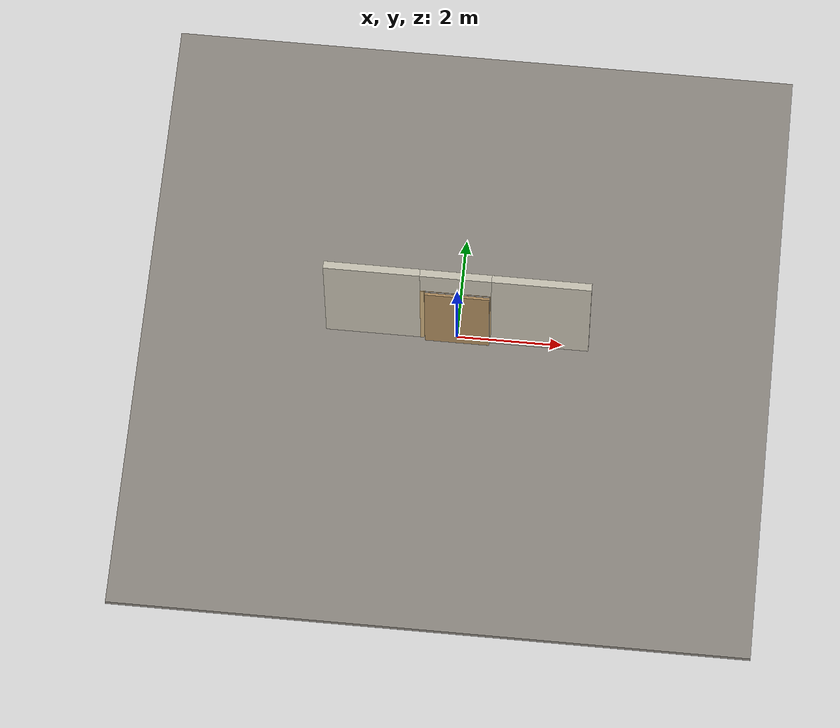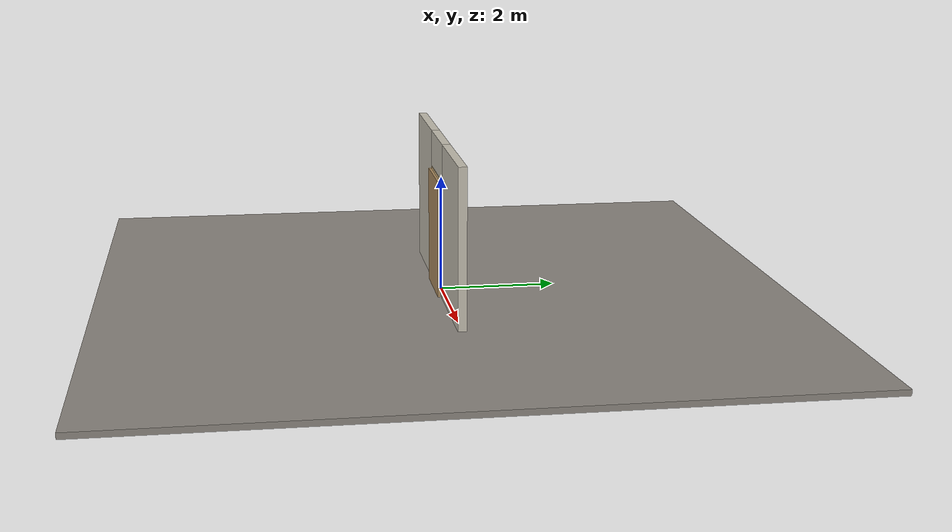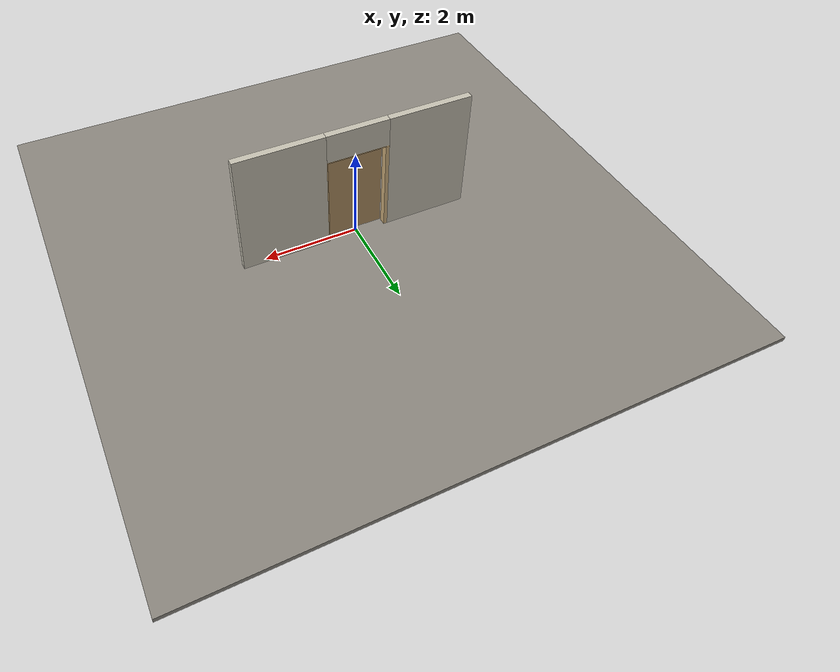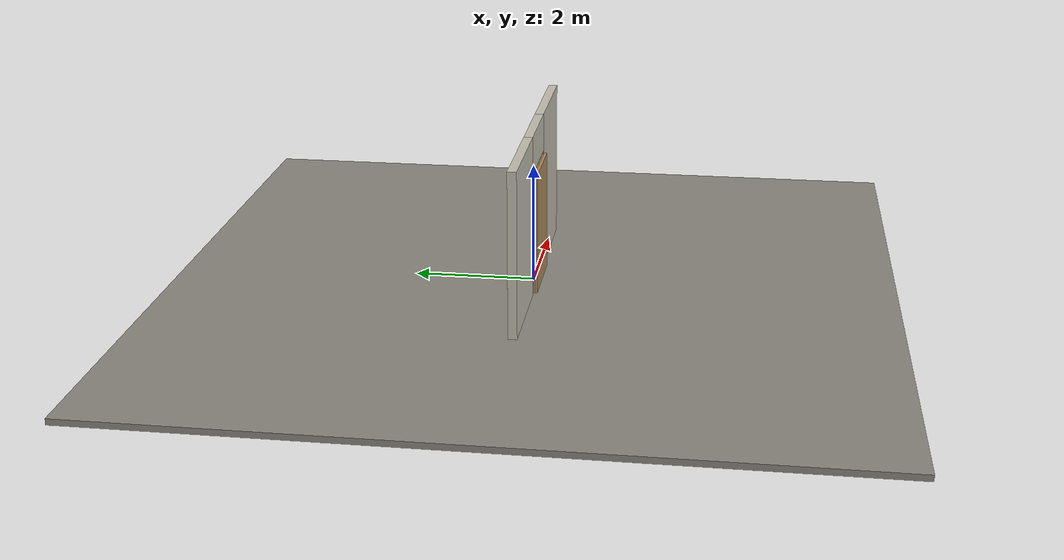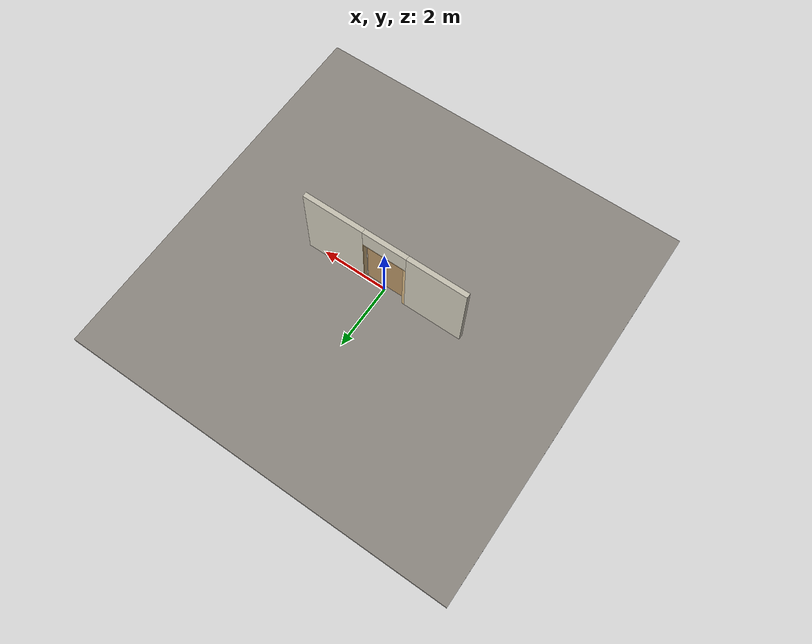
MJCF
<?xml version="1.0" ?>
<mujoco model="db0242_sliding_single_minimal">
  <compiler angle="radian" meshdir="../../hardware" texturedir="../../textures" autolimits="true" inertiafromgeom="false"/>
  <option timestep="0.002" integrator="implicitfast" cone="elliptic" impratio="10" noslip_iterations="3">
    <flag multiccd="enable"/>
  </option>
  <size memory="16M"/>
  <default>
    <geom condim="4" solref="0.005 1" solimp="0.95 0.99 0.001"/>
    <joint solreflimit="0.005 1" solimplimit="0.95 0.99 0.001"/>
    <tendon solreflimit="0.005 1"/>
    <equality solref="0.002 1"/>
  </default>
  <visual>
    <headlight ambient="0.4 0.4 0.4" diffuse="0.7 0.7 0.7" specular="0.2 0.2 0.2"/>
    <quality shadowsize="4096"/>
    <map znear="0.01" zfar="60"/>
  </visual>
  <asset>
    <material name="mat_floor" rgba="0.55 0.53 0.5 1" specular="0.2" shininess="0.15" reflectance="0"/>
    <material name="mat_wall" rgba="0.78 0.76 0.7 1" specular="0.2" shininess="0.1" reflectance="0"/>
    <material name="mat_frame" rgba="0.82 0.7 0.5 1" specular="0.2" shininess="0.45" reflectance="0"/>
    <material name="mat_track" rgba="0.05 0.05 0.05 1" specular="0.38" shininess="0.3" reflectance="0.12"/>
    <material name="mat_leaf" rgba="0.69 0.559 0.378 1" specular="0.2" shininess="0.45" reflectance="0"/>
    <material name="mat_leaf_panel" rgba="0.634 0.514 0.348 1" specular="0.2" shininess="0.45" reflectance="0"/>
    <material name="mat_roller" rgba="0.65 0.66 0.68 1" specular="0.74" shininess="0.5" reflectance="0.36"/>
    <material name="mat_hook" rgba="0.75 0.76 0.77 1" specular="0.8" shininess="0.65" reflectance="0.4"/>
    <texture name="skybox" type="skybox" builtin="gradient" rgb1="0.6 0.7 0.85" rgb2="0.9 0.92 0.95" width="256" height="256"/>
  </asset>
  <worldbody>
    <light name="sun" pos="1.5 -2.5 4" dir="-0.3 0.5 -0.8" directional="true" diffuse="0.8 0.8 0.8" specular="0.3 0.3 0.3" castshadow="true"/>
    <light name="fill" pos="-1.5 2.5 3" dir="0.3 -0.5 -0.7" directional="true" diffuse="0.35 0.35 0.4" castshadow="false"/>
    <camera name="robot_view" pos="0 -2.54875 1.73965" xyaxes="1 0 0 0 0.26963 0.962964" fovy="52"/>
    <camera name="far_view" pos="0 2.54875 1.73965" xyaxes="-1 0 0 0 -0.26963 0.962964" fovy="52"/>
    <camera name="iso" pos="1.93705 -2.14095 2.14745" xyaxes="0.741536 0.670913 0 -0.242917 0.268487 0.932151" fovy="46"/>
    <camera name="detail_handle" pos="0.48 -0.8 1.33" xyaxes="0.97561 0.219512 0 -0.070934 0.315262 0.94635" fovy="38"/>
    <geom name="floor" type="box" size="6 6 0.05" pos="0 0 -0.05" material="mat_floor" group="0" contype="1" conaffinity="1" friction="0.8 0.005 0.0001" density="2400"/>
    <geom name="wall_left" type="box" size="0.90075 0.0725 1.35" pos="-1.59925 0 1.35" material="mat_wall" group="0" contype="1" conaffinity="1" friction="0.6 0.005 0.0001" density="800"/>
    <geom name="wall_right" type="box" size="0.93075 0.0725 1.35" pos="1.56925 0 1.35" material="mat_wall" group="0" contype="1" conaffinity="1" friction="0.6 0.005 0.0001" density="800"/>
    <geom name="wall_header" type="box" size="0.6685 0.0725 0.3145" pos="-0.03 0 2.3855" material="mat_wall" group="0" contype="1" conaffinity="1" friction="0.6 0.005 0.0001" density="800"/>
    <geom name="jamb_r" type="box" size="0.0095 0.0725 1.026" pos="0.629 0 1.026" material="mat_frame" group="0" contype="1" conaffinity="1" friction="0.6 0.005 0.0001" density="300"/>
    <geom name="jamb_head" type="box" size="0.6385 0.0725 0.0095" pos="0 0 2.0615" material="mat_frame" group="0" contype="1" conaffinity="1" friction="0.6 0.005 0.0001" density="300"/>
    <geom name="jamb_latch_0" type="box" size="0.0395 0.0725 1.026" pos="-0.659 0 1.026" material="mat_frame" group="0" contype="1" conaffinity="1" friction="0.6 0.005 0.0001" density="300"/>
    <site name="approach_point" pos="0 -1.5 0" quat="1 0 0 0" size="0.05" rgba="0.2 0.9 0.2 0.5" group="4"/>
    <site name="goal_point" pos="0 1.5 0" quat="1 0 0 0" size="0.05" rgba="0.2 0.9 0.2 0.5" group="4"/>
    <site name="door_plane_center" pos="0 0 1.026" quat="1 0 0 0" size="0.02" rgba="0.2 0.9 0.2 0.5" group="4"/>
    <body name="leaf" pos="0 -0.1145 0">
      <inertial pos="0 0 1.028" mass="44.395341" quat="-0.5 0.5 0.5 0.5" diaginertia="5.504641199 15.282948086 20.773264388"/>
      <joint name="leaf_slide" type="slide" axis="1 0 0" limited="true" range="0 1.219" damping="4.219767" frictionloss="67.917653" armature="0.5"/>
      <geom name="leaf_slab" type="box" size="0.6095 0.022 1.016" pos="0 0 1.028" material="mat_leaf" group="0" contype="1" conaffinity="1" friction="0.35 0.005 0.0001" density="1"/>
      <site name="leaf_edge_mid" pos="-0.6095 0 1.028" quat="1 0 0 0" size="0.02" rgba="0.2 0.9 0.2 0.5" group="4"/>
    </body>
  </worldbody>
  <sensor>
    <jointpos name="leaf_slide_pos" joint="leaf_slide"/>
    <jointvel name="leaf_slide_vel" joint="leaf_slide"/>
  </sensor>
</mujoco>
